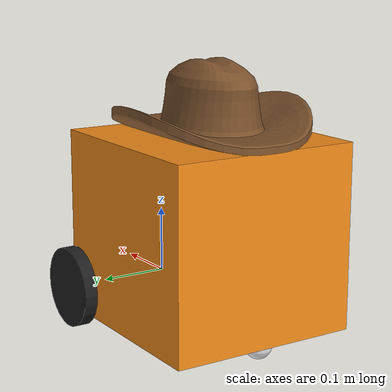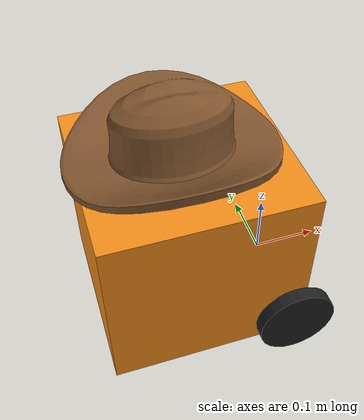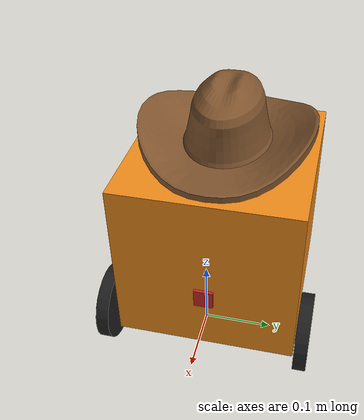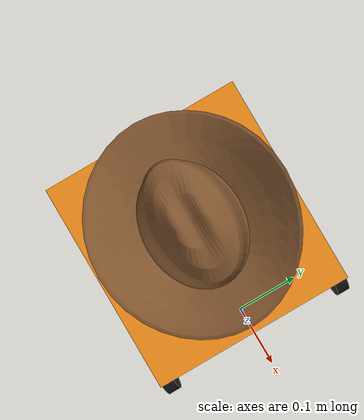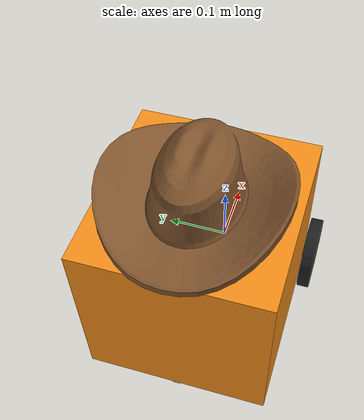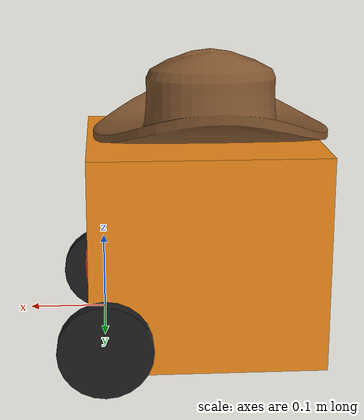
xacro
<?xml version="1.0"?>

<!-- Puts all the pieces (urdf, control, simulation) of the protobot together -->
<robot xmlns:xacro="http://www.ros.org/wiki/xacro" name="protobot">
    <xacro:arg name="prefix" default="" />
    <xacro:arg name="use_gazebo" default="false" />

    <!-- Import different pieces of the protobot -->
    <!-- RVIZ colors -->
    <xacro:include filename="$(find protobot_description)/urdf/materials.urdf.xacro" />

    <xacro:property name="chassis_length" value="0.3"/>
    <xacro:property name="wheel_axis_wrt_chassis_horizontal" value="${chassis_length - 0.02}"/>
    <xacro:property name="wheel_axis_wrt_chassis_vertical" value="0.04"/>
    <xacro:property name="wheel_radius" value="0.06"/>

    <!-- Use macros from imported files to define the full protobot -->
    <!-- Core URDF -->
    <xacro:include filename="$(find protobot_description)/urdf/protobot_core.urdf.xacro" />
    <xacro:protobot_core prefix="$(arg prefix)"
        chassis_mass="1.0"
        chassis_length="${chassis_length}"
        chassis_width="0.285"
        chassis_height="0.275"
        wheel_base="0.31"
        wheel_mass="0.2"
        wheel_width="0.020"
        wheel_radius="${wheel_radius}"
        wheel_axis_wrt_chassis_vertical="${wheel_axis_wrt_chassis_vertical}"
        wheel_axis_wrt_chassis_horizontal="${wheel_axis_wrt_chassis_horizontal}"
        caster_wheel_radius="${wheel_radius - wheel_axis_wrt_chassis_vertical}"
        caster_wheel_mass="0.1"
    />

    <!-- Camera -->
    <xacro:include filename="$(find protobot_description)/urdf/camera.urdf.xacro" />
    <xacro:camera parent="chassis" prefix="$(arg prefix)" use_gazebo="$(arg use_gazebo)">
        <origin xyz="${chassis_length} 0 0.1" rpy="0 0 0" />
    </xacro:camera>

    <!-- Inertial Measurement Unit (IMU) -->
    <xacro:include filename="$(find protobot_description)/urdf/imu_sensor.urdf.xacro" />
    <xacro:imu_sensor prefix="$(arg prefix)" parent="chassis" use_gazebo="$(arg use_gazebo)">
        <origin xyz="${wheel_axis_wrt_chassis_horizontal} 0 ${wheel_axis_wrt_chassis_vertical}" rpy="0 0 0" />
    </xacro:imu_sensor>

    <!-- ROS2 Control -->
    <xacro:include filename="$(find protobot_description)/urdf/protobot_control.urdf.xacro" />
    <xacro:protobot_ros2_control name="protobot" prefix="$(arg prefix)" use_gazebo="$(arg use_gazebo)" />

    <!-- Gazebo-specific URDF -->
    <xacro:if value="$(arg use_gazebo)">
        <xacro:include filename="$(find protobot_description)/urdf/protobot_gazebo.urdf.xacro" />
        <xacro:protobot_gazebo prefix="$(arg prefix)"/>
    </xacro:if>

</robot>

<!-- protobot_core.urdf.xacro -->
<robot xmlns:xacro="http://www.ros.org/wiki/xacro">
<!-- Modified from: https://github.com/ros-controls/ros2_control_demos/blob/master/ros2_control_demo_description/diffbot/urdf/diffbot_description.urdf.xacro -->

  <xacro:macro name="protobot_core" params="prefix
    chassis_mass:=1.0
    chassis_length:=0.3
    chassis_width:=0.25
    chassis_height:=0.15
    wheel_base:=0.31
    wheel_mass:=0.2
    wheel_width:=0.030
    wheel_radius:=0.06
    wheel_axis_wrt_chassis_vertical:=0.04
    wheel_axis_wrt_chassis_horizontal:=0.28
    caster_wheel_radius:=0.02
    caster_wheel_mass:=0.1">
    <!-- to keep the robot horizontal, set:
      caster_wheel_radius = wheel_radius - wheel_axis_wrt_chassis_vertical-->

    <!-- Constants for robot dimensions -->
    <xacro:property name="PI" value="3.1415926535897931"/>

    <!-- Frame at the midpoint of the wheel axis serves a the pendulum pivot point, and has no inertial properties for gazebo. -->
    <link name="base_link"/>

    <!-- Coordinate frame that is analogous to the mass of the pendulum.
    It is located at the robot's center of mass, and the x-axis intersects the base_link. -->

    <!-- Chassis Link -->
    <link name="${prefix}chassis">
      <collision>
        <origin xyz="${chassis_length/2} 0 ${chassis_height/2}" rpy="0 0 0"/>
        <geometry>
          <box size="${chassis_length} ${chassis_width} ${chassis_height}"/>
        </geometry>
      </collision>

      <visual>
        <origin xyz="${chassis_length/2} 0 ${chassis_height/2}" rpy="0 0 0"/>
        <geometry>
          <box size="${chassis_length} ${chassis_width} ${chassis_height}"/>
        </geometry>
        <material name="orange"/>
      </visual>

      <inertial>
        <origin xyz="${chassis_length/2} 0 ${chassis_height/2}" rpy="0 0 0"/>
        <mass value="${chassis_mass}"/>
        <inertia
          ixx="${chassis_mass / 12.0 * (chassis_width*chassis_width + chassis_height*chassis_height)}" ixy="0.0" ixz="0.0"
          iyy="${chassis_mass / 12.0 * (chassis_height*chassis_height + chassis_length*chassis_length)}" iyz="0.0"
          izz="${chassis_mass / 12.0 * (chassis_length*chassis_length + chassis_width*chassis_width)}"/>
        </inertial>
    </link>

    <joint name="${prefix}base_to_chassis_joint" type="fixed">
      <parent link="base_link"/>
      <child link="${prefix}chassis"/>
      <origin xyz="${-wheel_axis_wrt_chassis_horizontal} 0 ${-wheel_axis_wrt_chassis_vertical}" rpy="0 0 0" />
    </joint>

    <joint name="${prefix}left_wheel_joint" type="continuous">
      <parent link="${prefix}base_link"/>
      <child link="${prefix}left_wheel"/>
      <origin xyz="0 ${wheel_base/2} 0" rpy="${-PI/2} 0 0"/>
      <axis xyz="0 0 1"/>
    </joint>

    <!-- left wheel Link -->
    <link name="${prefix}left_wheel">
      <collision>
        <origin xyz="0 0 0" rpy="0 0 0"/>
        <geometry>
          <!-- Sphere has point-contact with the ground, which makes simulation more stable -->
          <sphere radius="${wheel_radius}"/>
        </geometry>
      </collision>

      <visual>
        <origin xyz="0 0 0" rpy="0 0 0"/>
        <geometry>
          <cylinder length="${wheel_width}" radius="${wheel_radius}"/>
        </geometry>
        <material name="black"/>
      </visual>

      <inertial>
        <origin xyz="0 0 0" rpy="0 0 0"/>
        <mass value="${wheel_mass}"/>
        <inertia
          ixx="${wheel_mass / 12.0 * (3*wheel_radius*wheel_radius + wheel_width*wheel_width)}" ixy="0.0" ixz="0.0"
          iyy="${wheel_mass / 12.0 * (3*wheel_radius*wheel_radius + wheel_width*wheel_width)}" iyz="0.0"
          izz="${wheel_mass / 2.0 * wheel_radius*wheel_radius}"/>
      </inertial>
    </link>

    <joint name="${prefix}right_wheel_joint" type="continuous">
      <parent link="${prefix}base_link"/>
      <child link="${prefix}right_wheel"/>
      <origin xyz="0 ${-wheel_base/2} 0" rpy="${PI/2} 0 0"/>
      <axis xyz="0 0 -1"/> <!-- Note that "Forward" rotation is opposite compared to the left wheel -->
    </joint>

    <!-- right wheel Link -->
    <link name="${prefix}right_wheel">
      <collision>
        <origin xyz="0 0 0" rpy="0 0 0"/>
        <geometry>
          <!-- Sphere has point-contact with the ground, which makes simulation more stable -->
          <sphere radius="${wheel_radius}"/>
        </geometry>
      </collision>

      <visual>
        <origin xyz="0 0 0" rpy="0 0 0"/>
        <geometry>
          <cylinder length="${wheel_width}" radius="${wheel_radius}"/>
        </geometry>
        <material name="black"/>
      </visual>

      <inertial>
        <origin xyz="0 0 0" rpy="0 0 0"/>
        <mass value="${wheel_mass}"/>
        <inertia
          ixx="${wheel_mass / 12.0 * (3*wheel_radius*wheel_radius + wheel_width*wheel_width)}" ixy="0.0" ixz="0.0"
          iyy="${wheel_mass / 12.0 * (3*wheel_radius*wheel_radius + wheel_width*wheel_width)}" iyz="0.0"
          izz="${wheel_mass / 2.0 * wheel_radius*wheel_radius}"/>
      </inertial>
    </link>

    <joint name="${prefix}caster_wheel_joint" type="fixed">
      <parent link="${prefix}chassis"/>
      <child link="${prefix}caster_wheel"/>
      <origin xyz="${caster_wheel_radius} 0 0" rpy="0 0 0"/>
    </joint>

    <!-- caster rear wheel Link -->
    <link name="${prefix}caster_wheel">
      <collision>
        <origin xyz="0 0 0" rpy="0 0 0"/>
        <geometry>
          <sphere radius="${caster_wheel_radius}"/>
        </geometry>
      </collision>

      <visual>
        <origin xyz="0 0 0" rpy="0 0 0"/>
        <geometry>
          <sphere radius="${caster_wheel_radius}"/>
        </geometry>
        <material name="white"/>
      </visual>

      <inertial>
        <origin xyz="0 0 0" rpy="0 0 0"/>
        <mass value="${caster_wheel_mass}"/>
        <inertia
          ixx="${caster_wheel_mass * 0.4 * (caster_wheel_radius * caster_wheel_radius)}" ixy="0.0" ixz="0.0"
          iyy="${caster_wheel_mass * 0.4 * (caster_wheel_radius * caster_wheel_radius)}" iyz="0.0"
          izz="${caster_wheel_mass * 0.4 * (caster_wheel_radius * caster_wheel_radius)}"/>
      </inertial>
    </link>

    <!-- Hat joint -->
    <joint name="${prefix}hat_joint" type="fixed">
      <parent link="${prefix}chassis"/>
      <child link="${prefix}hat"/>
      <origin xyz="${chassis_length/2} 0 ${chassis_height}" rpy="0 0 0"/>
    </joint>

    <!-- Hat link -->
    <link name="${prefix}hat">
      <visual>
        <origin xyz="0 0 0" rpy="0 0 0"/>
        <geometry>
          <mesh filename="file://$(find protobot_description)/meshes/cowboy_hat.stl" scale="0.001 0.001 0.001"/>
        </geometry>
        <material name="brown"/>
      </visual>
    </link>

  </xacro:macro>

</robot>

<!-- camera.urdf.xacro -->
<robot xmlns:xacro="http://www.ros.org/wiki/xacro" >

  <xacro:macro name="camera" params="parent prefix *origin use_gazebo:=false">

    <joint name="camera_joint" type="fixed">
        <parent link="${parent}"/>
        <child link="${prefix}camera_link"/>
        <xacro:insert_block name="origin"/>
    </joint>

    <link name="${prefix}camera_link">
        <visual>
            <geometry>
                <box size="0.010 0.03 0.03"/>
            </geometry>
            <material name="red"/>
        </visual>
        <collision>
            <geometry>
                <box size="0.010 0.03 0.03"/>
            </geometry>
        </collision>
        <inertial>
            <mass value="0.01"/>
            <inertia ixx="0.0001" ixy="0" ixz="0" iyy="0.0001" iyz="0" izz="0.0001"/>
        </inertial>
    </link>

    <joint name="camera_optical_joint" type="fixed">
        <parent link="${prefix}camera_link"/>
        <child link="${prefix}camera_link_optical"/>
        <origin xyz="0 0 0" rpy="${-pi/2} 0 ${-pi/2}"/>
    </joint>

    <link name="${prefix}camera_link_optical"></link>

    <xacro:if value="${use_gazebo}">
        <gazebo reference="${prefix}camera_link">
            <material>Gazebo/Red</material>

            <sensor name="camera" type="camera">
                <pose> 0 0 0 0 0 0 </pose>
                <visualize>true</visualize>
                <update_rate>10</update_rate>
                <camera>
                    <camera_info_topic>/camera/camera_info</camera_info_topic>
                    <optical_frame_id>camera_link_optical</optical_frame_id>
                    <horizontal_fov>1.089</horizontal_fov>
                    <image>
                        <format>R8G8B8</format>
                        <width>640</width>
                        <height>480</height>
                    </image>
                    <clip>
                        <near>0.05</near>
                        <far>8.0</far>
                    </clip>
                </camera>
                <topic>camera/image_raw</topic>
            </sensor>
        </gazebo>
    </xacro:if>

  </xacro:macro>

</robot>

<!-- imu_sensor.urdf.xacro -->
<robot xmlns:xacro="http://www.ros.org/wiki/xacro">
    <xacro:property name="M_PI" value="3.1415926535897931" />

    <xacro:macro name="imu_sensor" params="
        prefix:=''
        parent:='base_link'
        visual_xyz_offset:='0 0 0'
        visual_rpy_offset:='0 0 0'
        inertial_xyz_offset:='0 0 0'
        inertial_rpy_offset:='0 0 0'
        mass:=0.031
        length:=0.03899
        width:=0.03785
        height:=0.01338
        material_name:='blue'
        update_rate:='15.0'
        topic_name:='imu/data'
        always_on:=true
        visualize:=false
        *origin
        use_gazebo:=false
    ">

        <link name="${prefix}imu_link">
            <visual>
                <origin xyz="${visual_xyz_offset}" rpy="${visual_rpy_offset}"/>
                <geometry>
                    <box size="${length} ${width} ${height}"/>
                </geometry>
                <material name="${material_name}"/>
            </visual>

            <inertial>
                <mass value="${mass}" />
                <origin xyz="${inertial_xyz_offset}" rpy="${inertial_rpy_offset}"/>
                <inertia
                    ixx="${(mass/12.0) * (height*height + width*width)}"
                    ixy="0.0"
                    ixz="0.0"
                    iyy="${(mass/12.0) * (length*length + height*height)}"
                    iyz="0.0"
                    izz="${(mass/12.0) * (length*length + width*width)}" />
            </inertial>
        </link>

        <joint name="${prefix}imu_joint" type="fixed">
            <parent link="${parent}"/>
            <child link="${prefix}imu_link" />
            <xacro:insert_block name="origin"/>
        </joint>

        <xacro:if value="${use_gazebo}">
            <gazebo reference="${prefix}imu_link">
                <material>Gazebo/Blue</material>
                <sensor name="${prefix}imu_sensor" type="imu">
                    <topic>${topic_name}</topic>
                    <update_rate>${update_rate}</update_rate>
                    <always_on>${always_on}</always_on>
                    <visualize>${visualize}</visualize>
                    <imu>
                        <!-- Set the covariance matrix -->
                        <angular_velocity>
                            <x>
                            <noise type="gaussian">
                                <mean>0.0</mean>
                                <stddev>0.0001</stddev>
                                <bias_mean>0.0</bias_mean>
                                <bias_stddev>0.0</bias_stddev>
                            </noise>
                            </x>
                            <y>
                            <noise type="gaussian">
                                <mean>0.0</mean>
                                <stddev>0.0001</stddev>
                                <bias_mean>0.0</bias_mean>
                                <bias_stddev>0.0</bias_stddev>
                            </noise>
                            </y>
                            <z>
                            <noise type="gaussian">
                                <mean>0.0</mean>
                                <stddev>0.0001</stddev>
                                <bias_mean>0.0</bias_mean>
                                <bias_stddev>0.0</bias_stddev>
                            </noise>
                            </z>
                        </angular_velocity>
                        <linear_acceleration>
                            <x>
                            <noise type="gaussian">
                                <mean>0.0</mean>
                                <stddev>0.0001</stddev>
                                <bias_mean>0.0</bias_mean>
                                <bias_stddev>0.0</bias_stddev>
                            </noise>
                            </x>
                            <y>
                            <noise type="gaussian">
                                <mean>0.0</mean>
                                <stddev>0.0001</stddev>
                                <bias_mean>0.0</bias_mean>
                                <bias_stddev>0.0</bias_stddev>
                            </noise>
                            </y>
                            <z>
                            <noise type="gaussian">
                                <mean>0.0</mean>
                                <stddev>0.0001</stddev>
                                <bias_mean>0.0</bias_mean>
                                <bias_stddev>0.0</bias_stddev>
                            </noise>
                            </z>
                        </linear_acceleration>
                    </imu>
                </sensor>
            </gazebo>
        </xacro:if>
    </xacro:macro>
</robot>
